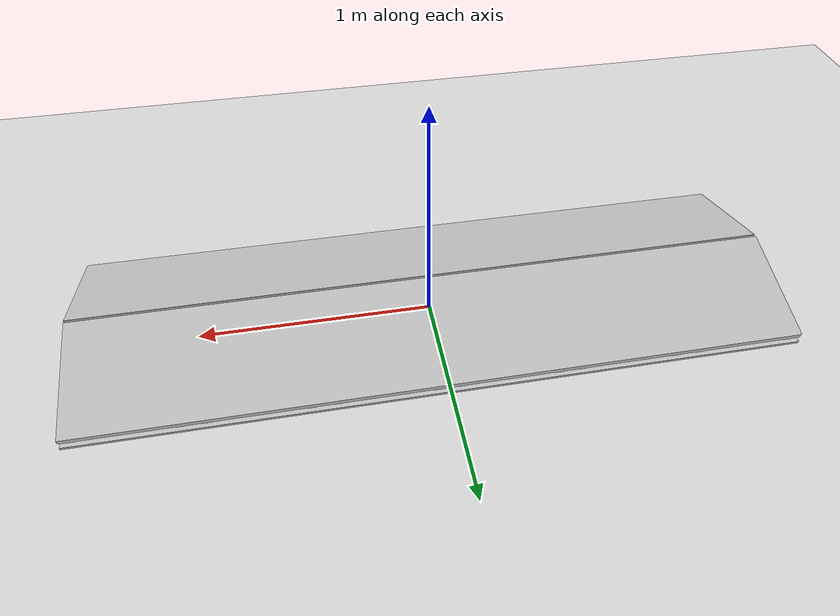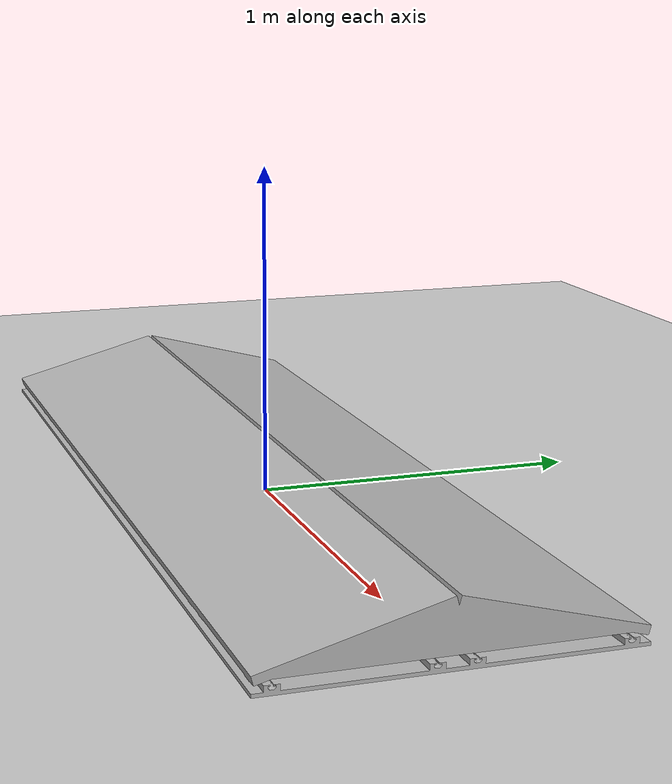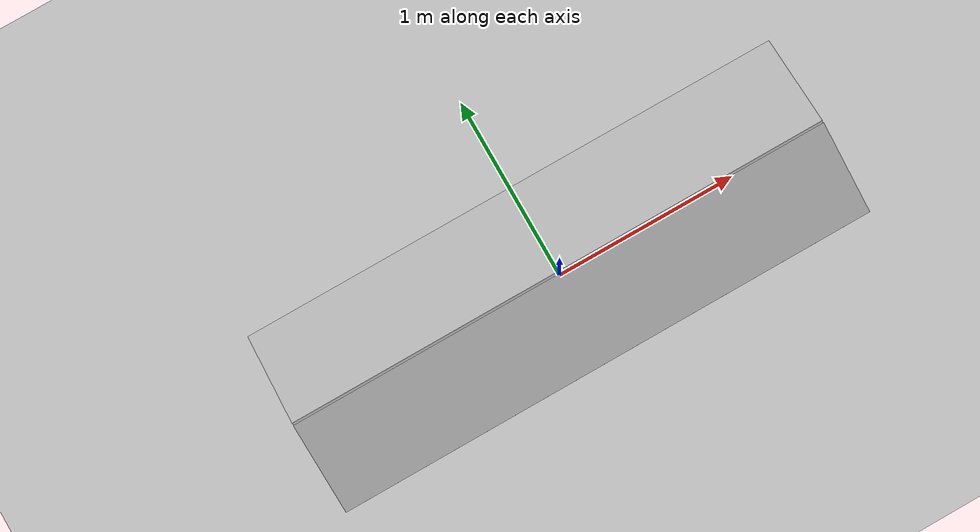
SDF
<?xml version="1.0" ?>
<sdf version="1.4">
  <world name="default">
    <physics type="ode">
      <gravity>0 0 -9.81</gravity>
      <ode>
        <solver>
          <type>quick</type>
          <iters>50</iters>
          <sor>1.4</sor>
        </solver>
        <constraints>
          <cfm>0.0</cfm>
          <erp>0.0</erp>
          <contact_max_correcting_vel>100.0</contact_max_correcting_vel>
          <contact_surface_layer>0.0</contact_surface_layer>
        </constraints>
      </ode>
      <real_time_update_rate>1000</real_time_update_rate>
      <max_step_size>0.001</max_step_size>
    </physics>
    <!-- A global light source -->
    <include>
      <uri>model://sun</uri>
    </include>
    <!-- A ground plane -->
    <include>
      <uri>model://ground_plane</uri>
    </include>

    <include>
      <uri>model://15deg_concave</uri>
          <pose>0.0 0.0 0.0 0.0 0.0 0.0</pose>
    </include>

  </world>
</sdf>

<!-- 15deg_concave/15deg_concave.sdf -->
<sdf version="1.5">
<model name="15deg_concave">
  <!-- Give the base link a unique name -->
  <link name="base">
    <pose>0 0 0 0 0 0</pose>
    <inertial>
      <pose>0 0 0 0 0 0</pose>
      <mass>90.27</mass>
      <inertia>
        <ixx>7.21</ixx>
        <ixy>0</ixy>
        <ixz>0</ixz>
        <iyy>68.30</iyy>
        <iyz>0</iyz>
        <izz>75.05</izz>
      </inertia>
    </inertial>
    <collision name="base_collision">
      <geometry>
        <mesh>
          <uri>model://15deg_concave/meshes/15deg_concave.stl</uri>
          <scale>1 1 1</scale>
        </mesh>
      </geometry>
    </collision>

    <!-- The visual is mostly a copy of the collision -->
    <visual name="base_visual">
      <!-- Offset the visual by have the base's height. We are not rotating
           mesh since symmetrical -->
      <geometry>
        <mesh>
              <uri>model://15deg_concave/meshes/15deg_concave.stl</uri>
        <scale>1 1 1</scale>
        </mesh>
      </geometry>
    </visual>
  </link>

</model>
</sdf>
